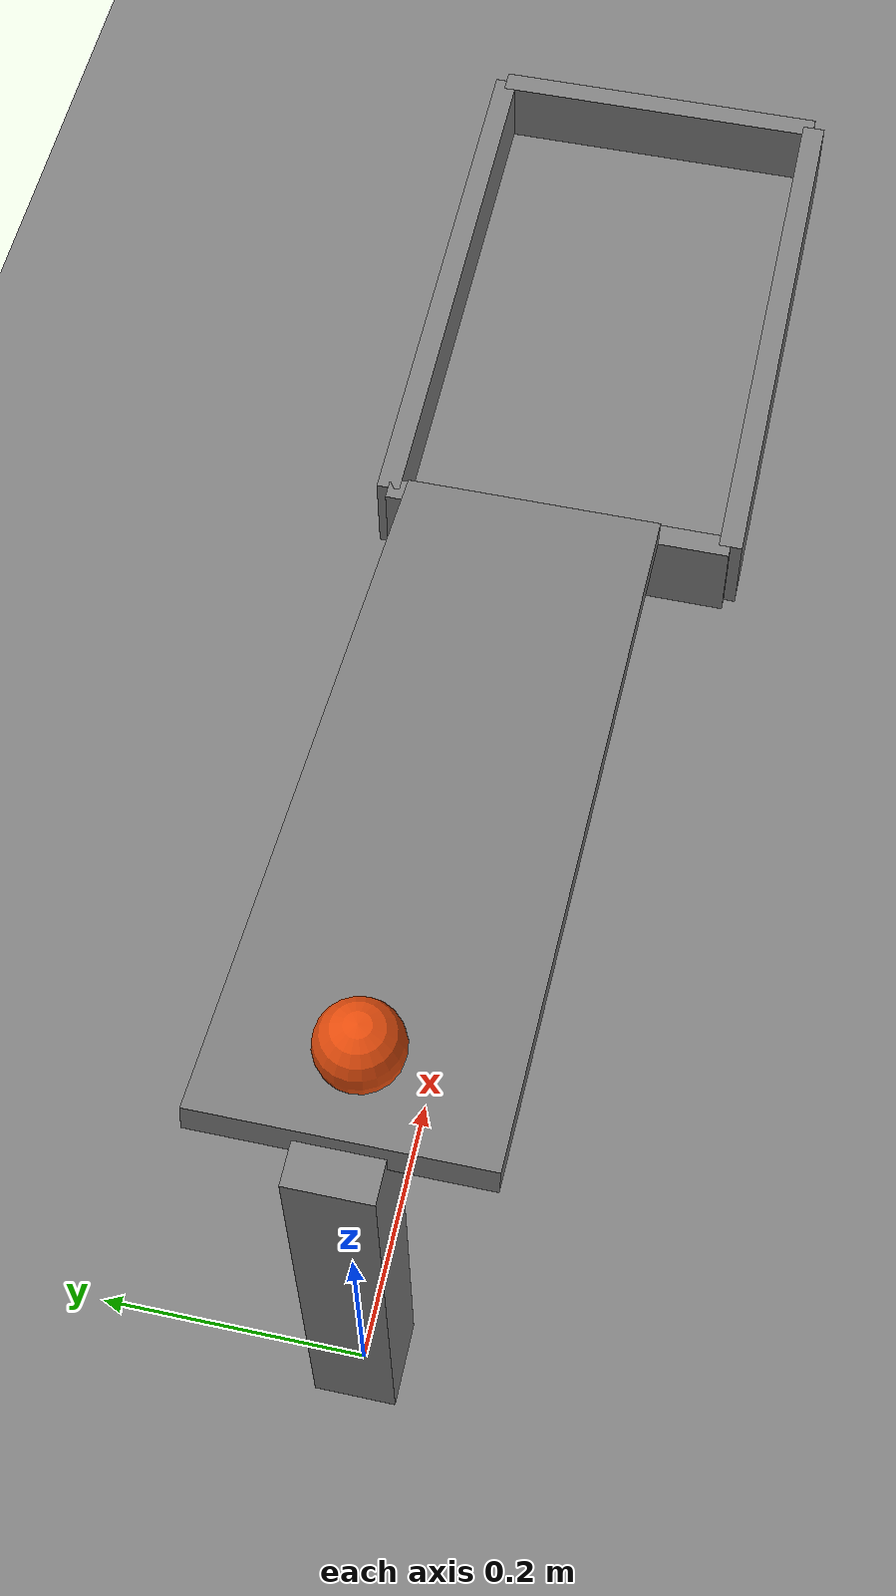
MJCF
<mujoco model="ball_down_a_ramp_into_a_cup">
  <compiler angle="radian"/>
  <option timestep="0.002"/>
  <worldbody>
    <geom name="floor" type="plane" size="6 6 0.1" friction="0.8 0.005 0.002"/>
    <body name="ramp">
      <geom name="ramp_deck" type="box" pos="0.3 0 0.325" size="0.309233 0.1 0.01" euler="0 0.244979 0"/>
      <geom name="ramp_leg" type="box" pos="0 0 0.2" size="0.03 0.03 0.2"/>
    </body>
    <body name="cup">
      <geom name="cup_base" type="box" pos="0.97 0 0.01" size="0.25 0.15 0.01"/>
      <geom name="cup_near_wall" type="box" pos="0.72 0 0.04" size="0.01 0.15 0.04"/>
      <geom name="cup_far_wall" type="box" pos="1.22 0 0.04" size="0.01 0.15 0.04"/>
      <geom name="cup_left_wall" type="box" pos="0.97 0.15 0.04" size="0.25 0.01 0.04"/>
      <geom name="cup_right_wall" type="box" pos="0.97 -0.15 0.04" size="0.25 0.01 0.04"/>
    </body>
    <body name="ball" pos="0.0582086 0 0.426679">
      <freejoint/>
      <geom name="ball" type="sphere" pos="0 0 0" size="0.03" mass="0.1" condim="6" friction="0.8 0.002 0.002" solref="0.01 1" rgba="0.9 0.3 0.05 1"/>
    </body>
  </worldbody>
  <keyframe>
    <key name="start" qpos="0.0582086 0 0.426679 1 0 0 0" qvel="0 0 0 0 0 0"/>
  </keyframe>
</mujoco>
